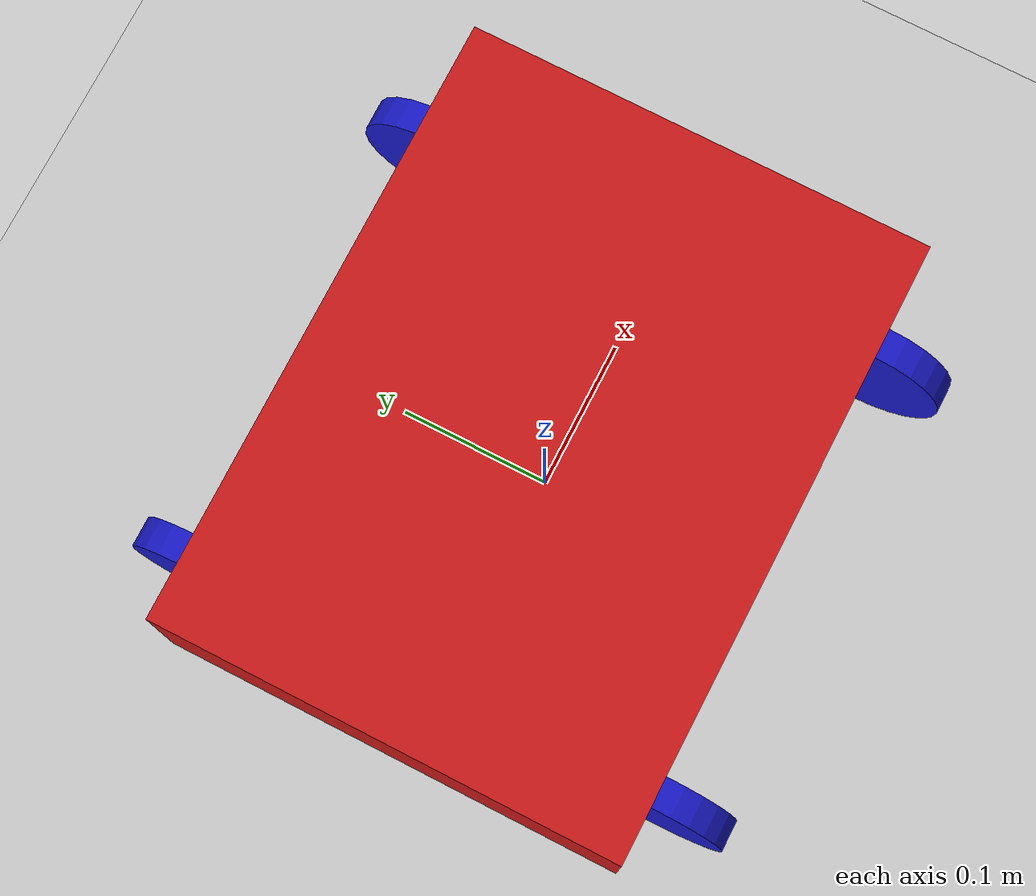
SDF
<?xml version="1.0" ?>
<sdf version="1.7">
  <world name="skid_steer_world">
    <!-- A global light source -->
    <light type="directional" name="sun">
      <cast_shadows>true</cast_shadows>
      <pose>0 0 10 0 0 0</pose>
      <diffuse>0.8 0.8 0.8 1</diffuse>
      <specular>0.2 0.2 0.2 1</specular>
      <attenuation>
        <range>1000</range>
        <constant>0.9</constant>
        <linear>0.01</linear>
        <quadratic>0.001</quadratic>
      </attenuation>
      <direction>-0.5 0.1 -0.9</direction>
    </light>

    <!-- A ground plane -->
    <model name="ground_plane">
      <static>true</static>
      <link name="link">
        <collision name="collision">
          <geometry>
            <plane>
              <normal>0 0 1</normal>
              <size>100 100</size>
            </plane>
          </geometry>
        </collision>
        <visual name="visual">
          <geometry>
            <plane>
              <normal>0 0 1</normal>
              <size>100 100</size>
            </plane>
          </geometry>
          <material>
            <ambient>0.8 0.8 0.8 1</ambient>
            <diffuse>0.8 0.8 0.8 1</diffuse>
            <specular>0.2 0.2 0.2 1</specular>
          </material>
        </visual>
      </link>
    </model>

    <!-- Include the skid steer robot -->
    <include>
      <uri>model://skid_steer_robot</uri>
      <name>skid_steer_robot</name>
      <pose>0 0 0.1 0 0 0</pose>
    </include>

    <!-- Physics settings -->
    <physics type="ode">
      <max_step_size>0.001</max_step_size>
      <real_time_factor>1</real_time_factor>
      <real_time_update_rate>1000</real_time_update_rate>
      <gravity>0 0 -9.81</gravity>
    </physics>

    <!-- Plugin for ros_gz bridge -->
    <plugin name="ros_gz_bridge" filename="libros_gz_bridge.so">
      <ros>
        <namespace>/</namespace>
        <remapping>cmd_vel:=/cmd_vel</remapping>
        <remapping>odom:=/odom</remapping>
        <remapping>tf:=/tf</remapping>
      </ros>
      <gz>
        <remapping>cmd_vel:=/cmd_vel</remapping>
        <remapping>odom:=/odom</remapping>
        <remapping>tf:=/tf</remapping>
      </gz>
    </plugin>

  </world>
</sdf>

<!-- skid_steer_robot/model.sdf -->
<sdf version="1.7">
  <model name="skid_steer_robot">
    <static>false</static>

    <!-- Base link -->
    <link name="base_link">
      <pose>0 0 0 0 0 0</pose>
      <collision name="base_collision">
        <geometry>
          <box>
            <size>0.4 0.3 0.1</size>
          </box>
        </geometry>
      </collision>
      <visual name="base_visual">
        <geometry>
          <box>
            <size>0.4 0.3 0.1</size>
          </box>
        </geometry>
        <material>
          <ambient>0.8 0.1 0.1 1.0</ambient>
          <diffuse>0.8 0.1 0.1 1.0</diffuse>
        </material>
      </visual>
      <inertial>
        <mass>10.0</mass>
        <inertia>
          <ixx>0.1</ixx>
          <ixy>0</ixy>
          <ixz>0</ixz>
          <iyy>0.1</iyy>
          <iyz>0</iyz>
          <izz>0.1</izz>
        </inertia>
      </inertial>
    </link>

    <!-- Wheels positioned relative to base -->
    <link name="front_left_wheel">
      <pose>0.15 0.15 -0.05 0 1.5708 0</pose>
      <collision name="front_left_wheel_collision">
        <geometry>
          <cylinder>
            <radius>0.05</radius>
            <length>0.02</length>
          </cylinder>
        </geometry>
      </collision>
      <visual name="front_left_wheel_visual">
        <geometry>
          <cylinder>
            <radius>0.05</radius>
            <length>0.02</length>
          </cylinder>
        </geometry>
        <material>
          <ambient>0.1 0.1 0.8 1.0</ambient>
          <diffuse>0.1 0.1 0.8 1.0</diffuse>
        </material>
      </visual>
      <inertial>
        <mass>1.0</mass>
        <inertia>
          <ixx>0.01</ixx>
          <ixy>0</ixy>
          <ixz>0</ixz>
          <iyy>0.01</iyy>
          <iyz>0</iyz>
          <izz>0.01</izz>
        </inertia>
      </inertial>
    </link>

    <link name="front_right_wheel">
      <pose>0.15 -0.15 -0.05 0 1.5708 0</pose>
      <collision name="front_right_wheel_collision">
        <geometry>
          <cylinder>
            <radius>0.05</radius>
            <length>0.02</length>
          </cylinder>
        </geometry>
      </collision>
      <visual name="front_right_wheel_visual">
        <geometry>
          <cylinder>
            <radius>0.05</radius>
            <length>0.02</length>
          </cylinder>
        </geometry>
        <material>
          <ambient>0.1 0.1 0.8 1.0</ambient>
          <diffuse>0.1 0.1 0.8 1.0</diffuse>
        </material>
      </visual>
      <inertial>
        <mass>1.0</mass>
        <inertia>
          <ixx>0.01</ixx>
          <ixy>0</ixy>
          <ixz>0</ixz>
          <iyy>0.01</iyy>
          <iyz>0</iyz>
          <izz>0.01</izz>
        </inertia>
      </inertial>
    </link>

    <link name="rear_left_wheel">
      <pose>-0.15 0.15 -0.05 0 1.5708 0</pose>
      <collision name="rear_left_wheel_collision">
        <geometry>
          <cylinder>
            <radius>0.05</radius>
            <length>0.02</length>
          </cylinder>
        </geometry>
      </collision>
      <visual name="rear_left_wheel_visual">
        <geometry>
          <cylinder>
            <radius>0.05</radius>
            <length>0.02</length>
          </cylinder>
        </geometry>
        <material>
          <ambient>0.1 0.1 0.8 1.0</ambient>
          <diffuse>0.1 0.1 0.8 1.0</diffuse>
        </material>
      </visual>
      <inertial>
        <mass>1.0</mass>
        <inertia>
          <ixx>0.01</ixx>
          <ixy>0</ixy>
          <ixz>0</ixz>
          <iyy>0.01</iyy>
          <iyz>0</iyz>
          <izz>0.01</izz>
        </inertia>
      </inertial>
    </link>

    <link name="rear_right_wheel">
      <pose>-0.15 -0.15 -0.05 0 1.5708 0</pose>
      <collision name="rear_right_wheel_collision">
        <geometry>
          <cylinder>
            <radius>0.05</radius>
            <length>0.02</length>
          </cylinder>
        </geometry>
      </collision>
      <visual name="rear_right_wheel_visual">
        <geometry>
          <cylinder>
            <radius>0.05</radius>
            <length>0.02</length>
          </cylinder>
        </geometry>
        <material>
          <ambient>0.1 0.1 0.8 1.0</ambient>
          <diffuse>0.1 0.1 0.8 1.0</diffuse>
        </material>
      </visual>
      <inertial>
        <mass>1.0</mass>
        <inertia>
          <ixx>0.01</ixx>
          <ixy>0</ixy>
          <ixz>0</ixz>
          <iyy>0.01</iyy>
          <iyz>0</iyz>
          <izz>0.01</izz>
        </inertia>
      </inertial>
    </link>

    <!-- Joints -->
    <joint name="front_left_wheel_joint" type="revolute">
      <parent>base_link</parent>
      <child>front_left_wheel</child>
      <axis>
        <xyz>0 1 0</xyz>
      </axis>
    </joint>

    <joint name="front_right_wheel_joint" type="revolute">
      <parent>base_link</parent>
      <child>front_right_wheel</child>
      <axis>
        <xyz>0 1 0</xyz>
      </axis>
    </joint>

    <joint name="rear_left_wheel_joint" type="revolute">
      <parent>base_link</parent>
      <child>rear_left_wheel</child>
      <axis>
        <xyz>0 1 0</xyz>
      </axis>
    </joint>

    <joint name="rear_right_wheel_joint" type="revolute">
      <parent>base_link</parent>
      <child>rear_right_wheel</child>
      <axis>
        <xyz>0 1 0</xyz>
      </axis>
    </joint>

    <!-- ros2_control plugin -->
    <gazebo>
      <plugin name="ros2_control" filename="libgazebo_ros2_control.so">
        <parameters>$(find skid_steer_robot)/config/ros2_control.yaml</parameters>
      </plugin>
    </gazebo>

  </model>
</sdf>
